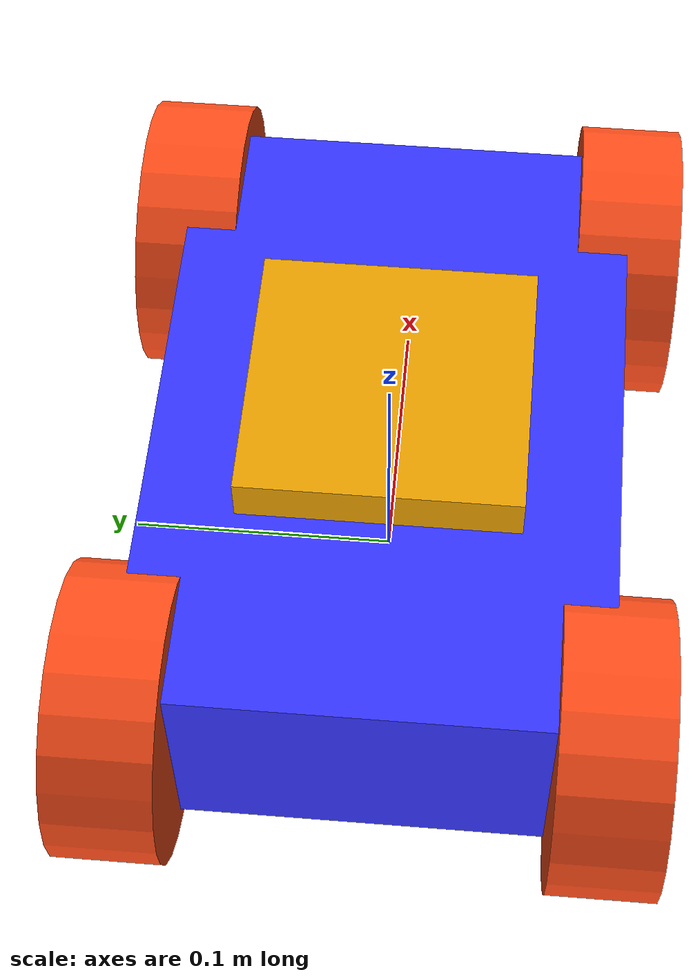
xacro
<?xml version="1.0"?>
<robot xmlns:xacro="http://www.ros.org/wiki/xacro" xmlns:gz="http://gazebosim.org/schema" name="robot">
    <xacro:include filename="$(find urdf_test)/description/constants.xacro" />
    <xacro:include filename="$(find urdf_test)/description/inertia.xacro" />
    <xacro:include filename="$(find urdf_test)/description/materials.xacro" />
    <xacro:arg name="use_sim" default="true" />
    <xacro:if value="$(arg use_sim)">
        <xacro:include filename="$(find urdf_test)/description/gazebo_control.xacro" />
    </xacro:if>
    <xacro:unless value="$(arg use_sim)">
        <xacro:include filename="$(find urdf_test)/description/hardware_control.xacro" />
    </xacro:unless>
    <xacro:include filename="$(find urdf_test)/description/aruco.xacro" />

    <link name="base_link"></link>

    <!-- Chassis link (250 x 167 x 82 mm), centered at wheel axle height -->
    <joint name="chassis_joint" type="fixed">
        <parent link="base_link"/>
        <child link="chassis_link"/>
        <origin xyz="0 0 ${chassis_center_z}" rpy="0 0 0"/>
    </joint>

    <link name="chassis_link">
        <visual>
            <geometry>
                <box size="${chassis_link_x} ${chassis_link_y} ${chassis_link_z}" />
            </geometry>
            <material name="blue" />
        </visual>
        <collision>
            <geometry>
                <box size="${chassis_link_x} ${chassis_link_y} ${chassis_link_z}" />
            </geometry>
        </collision>
        <xacro:inertial_box mass="${chassis_mass}" x="${chassis_link_x}" y="${chassis_link_y}" z="${chassis_link_z}">
            <origin xyz="0 0 0" rpy="0 0 0"/>
        </xacro:inertial_box>
    </link>
    <gazebo reference="chassis_link">
        <material>Gazebo/Blue</material>
    </gazebo>

    <xacro:macro name="mecanum_wheel" params="prefix x y fdir">
        <joint name="${prefix}_wheel_joint" type="continuous">
            <parent link="base_link"/>
            <child link="${prefix}_wheel_link"/>
            <origin xyz="${x} ${y} ${wheel_axle_z}" rpy="${-pi/2} 0 0" />
            <axis xyz="0 0 1"/>
        </joint>

        <link name="${prefix}_wheel_link">
            <visual>
                <geometry>
                    <cylinder radius="${wheel_link_diameter/2}" length="${wheel_link_length}"/>
                </geometry>
                <material name="orange"/>
            </visual>
            <collision>
                <geometry>
                    <sphere radius="${wheel_link_diameter/2}"/>
                </geometry>
            </collision>
            <xacro:inertial_cylinder mass="${wheel_mass}" length="${wheel_link_length}" radius="${wheel_link_diameter/2}">
                <origin xyz="0 0 0" rpy="0 0 0" />
            </xacro:inertial_cylinder>
        </link>
        <gazebo reference="${prefix}_wheel_link">
            <material>Gazebo/Orange</material>
            <collision>
                <surface>
                    <friction>
                        <ode>
                            <mu>1.0</mu>
                            <mu2>0.0</mu2>
                            <fdir1 gz:expressed_in="base_link">${fdir}</fdir1>
                        </ode>
                    </friction>
                </surface>
            </collision>
        </gazebo>
    </xacro:macro>

    <xacro:mecanum_wheel prefix="front_left"  x="${ wheel_base_x/2}" y="${ wheel_track_y/2}" fdir="1 -1 0" />
    <xacro:mecanum_wheel prefix="front_right" x="${ wheel_base_x/2}" y="${-wheel_track_y/2}" fdir="1 1 0" />
    <xacro:mecanum_wheel prefix="rear_left"   x="${-wheel_base_x/2}" y="${ wheel_track_y/2}" fdir="1 1 0" />
    <xacro:mecanum_wheel prefix="rear_right"  x="${-wheel_base_x/2}" y="${-wheel_track_y/2}" fdir="1 -1 0" />
</robot>

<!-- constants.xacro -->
<robot xmlns:xacro="http://www.ros.org/wiki/xacro">

    <xacro:property name="chassis_link_x" value="0.250" />
    <xacro:property name="chassis_link_y" value="0.167" />
    <xacro:property name="chassis_link_z" value="0.082" />

    <!-- Mecanum wheels, 104 mm diameter, 38 mm wide -->
    <xacro:property name="wheel_link_diameter" value="0.104" />
    <xacro:property name="wheel_link_length" value="0.038" />

    <!-- Distance between wheel centers, 216 mm (x, wheelbase) by 168 mm (y, track) -->
    <xacro:property name="wheel_base_x" value="0.216" />
    <xacro:property name="wheel_track_y" value="0.168" />

    <!-- Axle height above the ground (wheels touch the ground).
         The axle sits at the chassis mid-height, so the chassis center is at this same height. -->
    <xacro:property name="wheel_axle_z" value="${wheel_link_diameter/2}" />
    <xacro:property name="chassis_center_z" value="${wheel_axle_z}" />

    <xacro:property name="chassis_mass" value="0.5" />
    <xacro:property name="wheel_mass" value="0.1" />
</robot>

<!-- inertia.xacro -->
<robot xmlns:xacro="http://www.ros.org/wiki/xacro" >
    <!-- Specify some standard inertial calculations https://en.wikipedia.org/wiki/List_of_moments_of_inertia -->
    <!-- These make use of xacro's mathematical functionality -->

    <xacro:macro name="inertial_sphere" params="mass radius *origin">
        <inertial>
            <xacro:insert_block name="origin"/>
            <mass value="${mass}" />
            <inertia ixx="${(2/5) * mass * (radius*radius)}" ixy="0.0" ixz="0.0"
                    iyy="${(2/5) * mass * (radius*radius)}" iyz="0.0"
                    izz="${(2/5) * mass * (radius*radius)}" />
        </inertial>
    </xacro:macro>

    <xacro:macro name="inertial_box" params="mass x y z *origin">
        <inertial>
            <xacro:insert_block name="origin"/>
            <mass value="${mass}" />
            <inertia ixx="${(1/12) * mass * (y*y+z*z)}" ixy="0.0" ixz="0.0"
                    iyy="${(1/12) * mass * (x*x+z*z)}" iyz="0.0"
                    izz="${(1/12) * mass * (x*x+y*y)}" />
        </inertial>
    </xacro:macro>

    <xacro:macro name="inertial_cylinder" params="mass length radius *origin">
        <inertial>
            <xacro:insert_block name="origin"/>
            <mass value="${mass}" />
            <inertia ixx="${(1/12) * mass * (3*radius*radius + length*length)}" ixy="0.0" ixz="0.0"
                    iyy="${(1/12) * mass * (3*radius*radius + length*length)}" iyz="0.0"
                    izz="${(1/2) * mass * (radius*radius)}" />
        </inertial>
    </xacro:macro>

</robot>

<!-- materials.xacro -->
<robot xmlns:xacro="http://www.ros.org/wiki/xacro" >
    <!-- Specify some colours -->
    <material name="white">
        <color rgba="1 1 1 1"/>
    </material>

    <material name="orange">
        <color rgba="1 0.3 0.1 1"/>
    </material>

    <material name="blue">
        <color rgba="0.2 0.2 1 1"/>
    </material>
</robot>

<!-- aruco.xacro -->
<robot xmlns:xacro="http://ros.org/wiki/xacro">
    <link name="aruco_link">
        <visual>
            <geometry>
                <mesh filename="$(find urdf_test)/model/aruco_tag.dae" scale="1 1 1"/>
            </geometry>
            <origin xyz="0 0 0" rpy="0 0 0" />
        </visual>
        <collision>
            <geometry>
                <box size="0.1 0.1 0.02"/>
            </geometry>
            <origin xyz="0 0 0" rpy="0 0 0" />
        </collision>
        <inertial>
            <mass value="0.01"/>
            <origin xyz="0 0 0" />
            <inertia ixx="0.001" ixy="0.0" ixz="0.0" iyy="0.001" iyz="0.0" izz="0.001"/>
        </inertial>
    </link>

    <!-- Attach Cylinder Link to Base Link with a Fixed Joint -->
    <joint name="aruco_joint" type="fixed">
        <parent link="base_link"/>
        <child link="aruco_link"/>
        <origin xyz="0 0 0.1" rpy="0 0 ${-pi}"/>
    </joint>
</robot>
